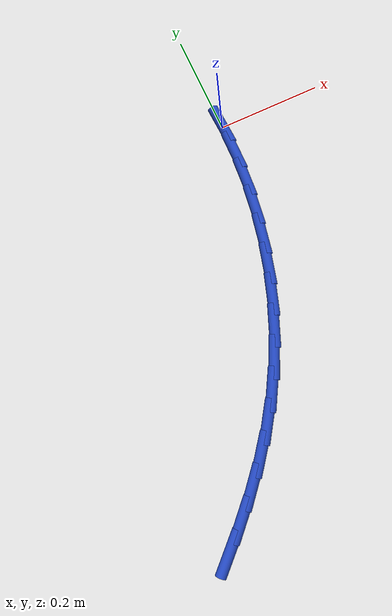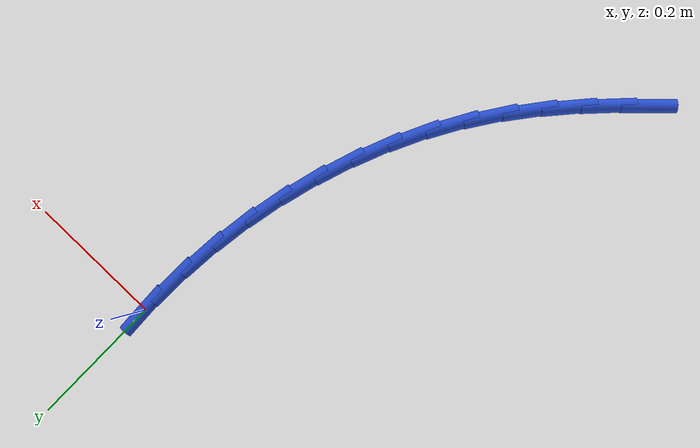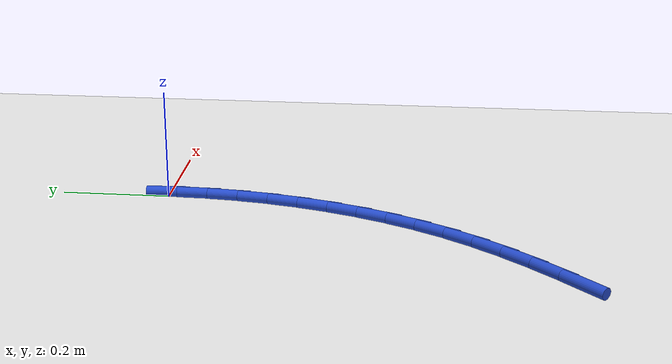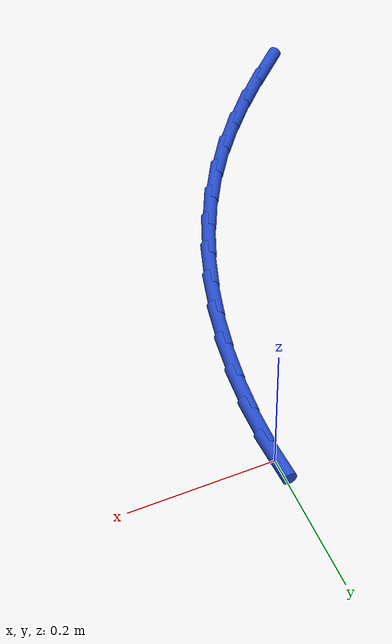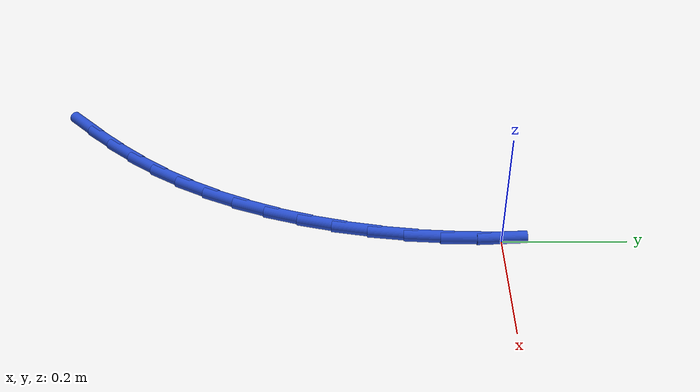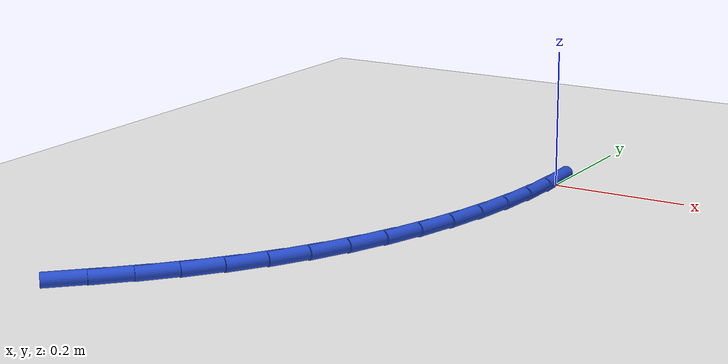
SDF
<sdf version="1.6">
 <world name="default">
  <model name="ground_plane">
   <static>1</static>
   <link name="link">
    <collision name="collision">
     <geometry><plane><normal>0 0 1</normal><size>100 100</size></plane></geometry>
     <surface><friction><ode><mu>100</mu><mu2>50</mu2></ode></friction></surface>
    </collision>
    <visual name="visual">
     <cast_shadows>0</cast_shadows>
     <geometry><plane><normal>0 0 1</normal><size>100 100</size></plane></geometry>
     <material>
      <script><uri>file://media/materials/scripts/gazebo.material</uri><name>Gazebo/WhiteGlow</name></script>
     </material>
    </visual>
   </link>
  </model>
  <model name="line">
   <link name="link_106">
    <pose>-0.3096443068588469 -0.7052091264434156 0.01 0 1.57 0.7668006293764829</pose>
    <collision name="collision">
     <geometry><cylinder><radius>0.01</radius><length>0.08</length></cylinder></geometry>
    </collision>
    <visual name="visual">
     <material>
      <script><name>Gazebo/Blue</name><uri>file://media/materials/scripts/gazebo.material</uri></script>
     </material>
     <geometry><cylinder><radius>0.01</radius><length>0.08</length></cylinder></geometry>
    </visual>
   </link>
   <link name="link_107">
    <pose>-0.2689850903683242 -0.666034788394188 0.01 0 1.57 0.8089122331885593</pose>
    <collision name="collision">
     <geometry><cylinder><radius>0.01</radius><length>0.08</length></cylinder></geometry>
    </collision>
    <visual name="visual">
     <material>
      <script><name>Gazebo/Blue</name><uri>file://media/materials/scripts/gazebo.material</uri></script>
     </material>
     <geometry><cylinder><radius>0.01</radius><length>0.08</length></cylinder></geometry>
    </visual>
   </link>
   <link name="link_108">
    <pose>-0.230305846440942 -0.6254923775459953 0.01 0 1.57 0.8595978380362451</pose>
    <collision name="collision">
     <geometry><cylinder><radius>0.01</radius><length>0.08</length></cylinder></geometry>
    </collision>
    <visual name="visual">
     <material>
      <script><name>Gazebo/Blue</name><uri>file://media/materials/scripts/gazebo.material</uri></script>
     </material>
     <geometry><cylinder><radius>0.01</radius><length>0.08</length></cylinder></geometry>
    </visual>
   </link>
   <link name="link_109">
    <pose>-0.19392676674740283 -0.5832703980207361 0.01 0 1.57 0.9186815557016058</pose>
    <collision name="collision">
     <geometry><cylinder><radius>0.01</radius><length>0.08</length></cylinder></geometry>
    </collision>
    <visual name="visual">
     <material>
      <script><name>Gazebo/Blue</name><uri>file://media/materials/scripts/gazebo.material</uri></script>
     </material>
     <geometry><cylinder><radius>0.01</radius><length>0.08</length></cylinder></geometry>
    </visual>
   </link>
   <link name="link_110">
    <pose>-0.1601680429584077 -0.5390573539403074 0.01 0 1.57 0.9856533429403697</pose>
    <collision name="collision">
     <geometry><cylinder><radius>0.01</radius><length>0.08</length></cylinder></geometry>
    </collision>
    <visual name="visual">
     <material>
      <script><name>Gazebo/Blue</name><uri>file://media/materials/scripts/gazebo.material</uri></script>
     </material>
     <geometry><cylinder><radius>0.01</radius><length>0.08</length></cylinder></geometry>
    </visual>
   </link>
   <link name="link_111">
    <pose>-0.12934968026420307 -0.49254215665677836 0.01 0 1.57 1.057035529565783</pose>
    <collision name="collision">
     <geometry><cylinder><radius>0.01</radius><length>0.08</length></cylinder></geometry>
    </collision>
    <visual name="visual">
     <material>
      <script><name>Gazebo/Blue</name><uri>file://media/materials/scripts/gazebo.material</uri></script>
     </material>
     <geometry><cylinder><radius>0.01</radius><length>0.08</length></cylinder></geometry>
    </visual>
   </link>
   <link name="link_112">
    <pose>-0.1017175421832405 -0.44357562578083454 0.01 0 1.57 1.1259687157771705</pose>
    <collision name="collision">
     <geometry><cylinder><radius>0.01</radius><length>0.08</length></cylinder></geometry>
    </collision>
    <visual name="visual">
     <material>
      <script><name>Gazebo/Blue</name><uri>file://media/materials/scripts/gazebo.material</uri></script>
     </material>
     <geometry><cylinder><radius>0.01</radius><length>0.08</length></cylinder></geometry>
    </visual>
   </link>
   <link name="link_113">
    <pose>-0.07733055972663097 -0.39241679827260145 0.01 0 1.57 1.1919101887525487</pose>
    <collision name="collision">
     <geometry><cylinder><radius>0.01</radius><length>0.08</length></cylinder></geometry>
    </collision>
    <visual name="visual">
     <material>
      <script><name>Gazebo/Blue</name><uri>file://media/materials/scripts/gazebo.material</uri></script>
     </material>
     <geometry><cylinder><radius>0.01</radius><length>0.08</length></cylinder></geometry>
    </visual>
   </link>
   <link name="link_114">
    <pose>-0.056218660989466485 -0.3393880467509966 0.01 0 1.57 1.2554116052827082</pose>
    <collision name="collision">
     <geometry><cylinder><radius>0.01</radius><length>0.08</length></cylinder></geometry>
    </collision>
    <visual name="visual">
     <material>
      <script><name>Gazebo/Blue</name><uri>file://media/materials/scripts/gazebo.material</uri></script>
     </material>
     <geometry><cylinder><radius>0.01</radius><length>0.08</length></cylinder></geometry>
    </visual>
   </link>
   <link name="link_115">
    <pose>-0.03841177406683921 -0.2848117438349379 0.01 0 1.57 1.3170400153928459</pose>
    <collision name="collision">
     <geometry><cylinder><radius>0.01</radius><length>0.08</length></cylinder></geometry>
    </collision>
    <visual name="visual">
     <material>
      <script><name>Gazebo/Blue</name><uri>file://media/materials/scripts/gazebo.material</uri></script>
     </material>
     <geometry><cylinder><radius>0.01</radius><length>0.08</length></cylinder></geometry>
    </visual>
   </link>
   <link name="link_116">
    <pose>-0.02393982705384204 -0.22901026214334527 0.01 0 1.57 1.377368090546668</pose>
    <collision name="collision">
     <geometry><cylinder><radius>0.01</radius><length>0.08</length></cylinder></geometry>
    </collision>
    <visual name="visual">
     <material>
      <script><name>Gazebo/Blue</name><uri>file://media/materials/scripts/gazebo.material</uri></script>
     </material>
     <geometry><cylinder><radius>0.01</radius><length>0.08</length></cylinder></geometry>
    </visual>
   </link>
   <link name="link_117">
    <pose>-0.012832748045567116 -0.17230597429513675 0.01 0 1.57 1.4369702933764</pose>
    <collision name="collision">
     <geometry><cylinder><radius>0.01</radius><length>0.08</length></cylinder></geometry>
    </collision>
    <visual name="visual">
     <material>
      <script><name>Gazebo/Blue</name><uri>file://media/materials/scripts/gazebo.material</uri></script>
     </material>
     <geometry><cylinder><radius>0.01</radius><length>0.08</length></cylinder></geometry>
    </visual>
   </link>
   <link name="link_118">
    <pose>-0.005120465137106855 -0.1150212529092308 0.01 0 1.57 1.4964229609587674</pose>
    <collision name="collision">
     <geometry><cylinder><radius>0.01</radius><length>0.08</length></cylinder></geometry>
    </collision>
    <visual name="visual">
     <material>
      <script><name>Gazebo/Blue</name><uri>file://media/materials/scripts/gazebo.material</uri></script>
     </material>
     <geometry><cylinder><radius>0.01</radius><length>0.08</length></cylinder></geometry>
    </visual>
   </link>
   <link name="link_119">
    <pose>-0.0008329064235536258 -0.05747847060454523 0.01 0 1.57 1.5563065861373477</pose>
    <collision name="collision">
     <geometry><cylinder><radius>0.01</radius><length>0.08</length></cylinder></geometry>
    </collision>
    <visual name="visual">
     <material>
      <script><name>Gazebo/Blue</name><uri>file://media/materials/scripts/gazebo.material</uri></script>
     </material>
     <geometry><cylinder><radius>0.01</radius><length>0.08</length></cylinder></geometry>
    </visual>
   </link>
   <link name="link_120">
    <pose>5.204170427930421e-17 -1.6653345369377348e-16 0.01 0 1.57 -1.5243838766609277</pose>
    <collision name="collision">
     <geometry><cylinder><radius>0.01</radius><length>0.08</length></cylinder></geometry>
    </collision>
    <visual name="visual">
     <material>
      <script><name>Gazebo/Blue</name><uri>file://media/materials/scripts/gazebo.material</uri></script>
     </material>
     <geometry><cylinder><radius>0.01</radius><length>0.08</length></cylinder></geometry>
    </visual>
   </link>
  </model>
 </world>
</sdf>
